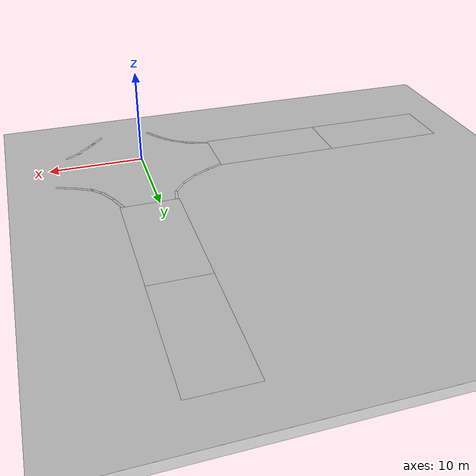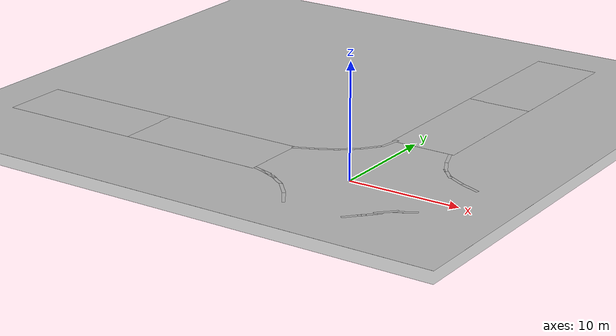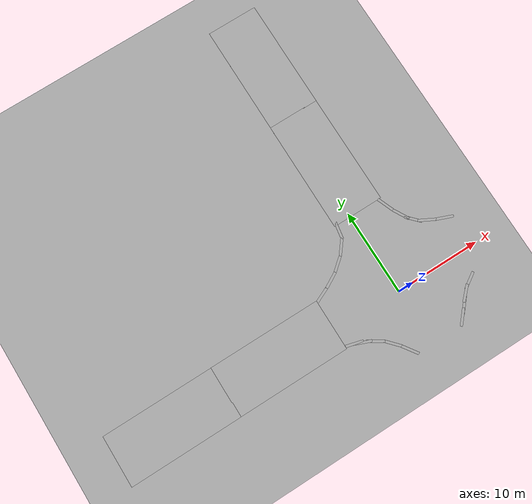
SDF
<sdf version="1.6">
 <world name="default">
  <model name="ground_plane">
   <pose>0 0 -1 0 -0 0</pose>
   <static>1</static>
   <link name="link">
    <collision name="collision">
     <geometry><plane><normal>0 0 1</normal><size>100 100</size></plane></geometry>
     <surface><friction><ode><mu>100</mu><mu2>50</mu2></ode></friction></surface>
    </collision>
    <visual name="visual">
     <cast_shadows>0</cast_shadows>
     <geometry><plane><normal>0 0 1</normal><size>100 100</size></plane></geometry>
     <material>
      <script><uri>file://media/materials/scripts/gazebo.material</uri><name>Gazebo/Grey</name></script>
     </material>
    </visual>
   </link>
  </model>
  <model name="road">
   <link name="body">
    <visual name="visual">
     <geometry><mesh><uri>file://road.dae</uri></mesh></geometry>
     <material><shader type="pixel"/></material>
    </visual>
   </link>
   <static>1</static>
   <pose>0.980998 16.1846 0 0 -0 0</pose>
  </model>
  <model name="road_0">
   <link name="body">
    <visual name="visual">
     <geometry><mesh><uri>file://road.dae</uri></mesh></geometry>
     <material><shader type="pixel"/></material>
    </visual>
   </link>
   <static>1</static>
   <pose>0.990078 29.3133 0 0 -0 0</pose>
  </model>
  <model name="road_4_clone_clone_1_clone">
   <link name="body">
    <visual name="visual">
     <geometry><mesh><uri>file://road.dae</uri></mesh></geometry>
     <material><shader type="pixel"/></material>
    </visual>
   </link>
   <static>1</static>
   <pose>-14.6376 0.870939 0 0 -0 1.57</pose>
  </model>
  <model name="road_4_clone_clone_1_clone_0">
   <link name="body">
    <visual name="visual">
     <geometry><mesh><uri>file://road.dae</uri></mesh></geometry>
     <material><shader type="pixel"/></material>
    </visual>
   </link>
   <static>1</static>
   <pose>-27.7601 0.868153 0 0 -0 1.57</pose>
  </model>
  <model name="serit_s_clone_0_clone">
   <link name="body">
    <visual name="visual">
     <geometry><mesh><uri>file://serit.dae</uri></mesh></geometry>
     <material><shader type="pixel"/></material>
    </visual>
   </link>
   <static>1</static>
   <pose>-2.40085 -5.82168 0 0 -0 0.603611</pose>
  </model>
  <model name="serit_s_clone_0_clone_1">
   <link name="body">
    <visual name="visual">
     <geometry><mesh><uri>file://serit.dae</uri></mesh></geometry>
     <material><shader type="pixel"/></material>
    </visual>
   </link>
   <static>1</static>
   <pose>-3.59152 -4.29035 0 0 -0 0.737264</pose>
  </model>
  <model name="serit_s_clone_0_clone_2">
   <link name="body">
    <visual name="visual">
     <geometry><mesh><uri>file://serit.dae</uri></mesh></geometry>
     <material><shader type="pixel"/></material>
    </visual>
   </link>
   <static>1</static>
   <pose>-7.05243 -2.12245 0 0 -0 1.30223</pose>
  </model>
  <model name="serit_s_clone_0_clone_3">
   <link name="body">
    <visual name="visual">
     <geometry><mesh><uri>file://serit.dae</uri></mesh></geometry>
     <material><shader type="pixel"/></material>
    </visual>
   </link>
   <static>1</static>
   <pose>-5.00283 -3.09727 0 0 -0 0.981012</pose>
  </model>
  <model name="serit_s_clone_0_clone_4">
   <link name="body">
    <visual name="visual">
     <geometry><mesh><uri>file://serit.dae</uri></mesh></geometry>
     <material><shader type="pixel"/></material>
    </visual>
   </link>
   <static>1</static>
   <pose>-6.22705 -2.47566 0 0 -0 1.18518</pose>
  </model>
  <model name="serit_s_clone_0_clone_5">
   <link name="body">
    <visual name="visual">
     <geometry><mesh><uri>file://serit.dae</uri></mesh></geometry>
     <material><shader type="pixel"/></material>
    </visual>
   </link>
   <static>1</static>
   <pose>8.66312 4.02994 0 0 -0 1.19518</pose>
  </model>
  <model name="serit_s_clone_0_clone_5_clone">
   <link name="body">
    <visual name="visual">
     <geometry><mesh><uri>file://serit.dae</uri></mesh></geometry>
     <material><shader type="pixel"/></material>
    </visual>
   </link>
   <static>1</static>
   <pose>6.88882 4.84864 0 0 -0 1.08006</pose>
  </model>
  <model name="serit_s_clone_0_clone_5_clone_0">
   <link name="body">
    <visual name="visual">
     <geometry><mesh><uri>file://serit.dae</uri></mesh></geometry>
     <material><shader type="pixel"/></material>
    </visual>
   </link>
   <static>1</static>
   <pose>3.99809 8.68661 0 0 -0 0.373348</pose>
  </model>
  <model name="serit_s_clone_0_clone_5_clone_0_clone">
   <link name="body">
    <visual name="visual">
     <geometry><mesh><uri>file://serit.dae</uri></mesh></geometry>
     <material><shader type="pixel"/></material>
    </visual>
   </link>
   <static>1</static>
   <pose>4.83984 6.87474 0 0 -0 0.499326</pose>
  </model>
  <model name="serit_s_clone_0_clone_5_clone_0_clone_clone">
   <link name="body">
    <visual name="visual">
     <geometry><mesh><uri>file://serit.dae</uri></mesh></geometry>
     <material><shader type="pixel"/></material>
    </visual>
   </link>
   <static>1</static>
   <pose>5.67555 5.721 0 0 -0 0.749397</pose>
  </model>
  <model name="serit_s_clone_0_clone_1_clone_0_clone_2_clone_2_clone_1_clone_0_clone_5_clone_2_clone_3_clone_7_clone_3_clone_9_clone_1_clone_clone_0_clone_clone_4_clone_1_clone_clone_5_clone_14_clone_clone_clone_6">
   <link name="body">
    <visual name="visual">
     <geometry><mesh><uri>file://serit.dae</uri></mesh></geometry>
     <material><shader type="pixel"/></material>
    </visual>
   </link>
   <static>1</static>
   <pose>-7.2749 4.02087 0 0 -0 1.99619</pose>
  </model>
  <model name="serit_s_clone_0_clone_1_clone_0_clone_2_clone_2_clone_1_clone_0_clone_5_clone_2_clone_3_clone_7_clone_3_clone_9_clone_1_clone_clone_0_clone_clone_4_clone_1_clone_clone_5_clone_14_clone_clone_clone_7">
   <link name="body">
    <visual name="visual">
     <geometry><mesh><uri>file://serit.dae</uri></mesh></geometry>
     <material><shader type="pixel"/></material>
    </visual>
   </link>
   <static>1</static>
   <pose>-5.53492 4.88162 0 0 -0 2.07962</pose>
  </model>
  <model name="serit_s_clone_0_clone_1_clone_0_clone_2_clone_2_clone_1_clone_0_clone_5_clone_2_clone_3_clone_7_clone_3_clone_9_clone_1_clone_clone_0_clone_clone_4_clone_1_clone_clone_5_clone_14_clone_clone_clone_8">
   <link name="body">
    <visual name="visual">
     <geometry><mesh><uri>file://serit.dae</uri></mesh></geometry>
     <material><shader type="pixel"/></material>
    </visual>
   </link>
   <static>1</static>
   <pose>-3.94658 5.98747 0 0 -0 2.26698</pose>
  </model>
  <model name="serit_s_clone_0_clone_1_clone_0_clone_2_clone_2_clone_1_clone_0_clone_5_clone_2_clone_3_clone_7_clone_3_clone_9_clone_1_clone_clone_0_clone_clone_4_clone_1_clone_clone_5_clone_14_clone_clone_clone_9">
   <link name="body">
    <visual name="visual">
     <geometry><mesh><uri>file://serit.dae</uri></mesh></geometry>
     <material><shader type="pixel"/></material>
    </visual>
   </link>
   <static>1</static>
   <pose>-2.63591 7.34053 0 0 -0 2.4778</pose>
  </model>
  <model name="serit_s_clone_0_clone_1_clone_0_clone_2_clone_2_clone_1_clone_0_clone_5_clone_2_clone_3_clone_7_clone_3_clone_9_clone_1_clone_clone_0_clone_clone_4_clone_1_clone_clone_5_clone_14_clone_clone_clone_10">
   <link name="body">
    <visual name="visual">
     <geometry><mesh><uri>file://serit.dae</uri></mesh></geometry>
     <material><shader type="pixel"/></material>
    </visual>
   </link>
   <static>1</static>
   <pose>-1.86912 8.98269 0 0 -0 2.97126</pose>
  </model>
  <model name="serit_s_clone_0_clone_1_clone_0_clone_2_clone_2_clone_1_clone_0_clone_5_clone_2_clone_3_clone_7_clone_3_clone_9_clone_1_clone_clone_0_clone_clone_4_clone_1_clone_clone_5_clone_14_clone_clone_clone_11">
   <link name="body">
    <visual name="visual">
     <geometry><mesh><uri>file://serit.dae</uri></mesh></geometry>
     <material><shader type="pixel"/></material>
    </visual>
   </link>
   <static>1</static>
   <pose>4.24907 -5.90929 -0.047361 0 -0 2.39773</pose>
  </model>
  <model name="serit_s_clone_0_clone_1_clone_0_clone_2_clone_2_clone_1_clone_0_clone_5_clone_2_clone_3_clone_7_clone_3_clone_9_clone_1_clone_clone_0_clone_clone_4_clone_1_clone_clone_5_clone_14_clone_clone_clone_12_clone">
   <link name="body">
    <visual name="visual">
     <geometry><mesh><uri>file://serit.dae</uri></mesh></geometry>
     <material><shader type="pixel"/></material>
    </visual>
   </link>
   <static>1</static>
   <pose>7.08597 -3.06371 0 0 -0 2.14787</pose>
  </model>
  <model name="serit_s_clone_0_clone_1_clone_0_clone_2_clone_2_clone_1_clone_0_clone_5_clone_2_clone_3_clone_7_clone_3_clone_9_clone_1_clone_clone_0_clone_clone_4_clone_1_clone_clone_5_clone_14_clone_clone_clone_12_clone_0">
   <link name="body">
    <visual name="visual">
     <geometry><mesh><uri>file://serit.dae</uri></mesh></geometry>
     <material><shader type="pixel"/></material>
    </visual>
   </link>
   <static>1</static>
   <pose>5.91201 -3.98768 0.060602 0 -0 2.35775</pose>
  </model>
  <model name="serit_s_clone_0_clone_1_clone_0_clone_2_clone_2_clone_1_clone_0_clone_5_clone_2_clone_3_clone_7_clone_3_clone_9_clone_1_clone_clone_0_clone_clone_4_clone_1_clone_clone_5_clone_14_clone_clone_clone_12_clone_1">
   <link name="body">
    <visual name="visual">
     <geometry><mesh><uri>file://serit.dae</uri></mesh></geometry>
     <material><shader type="pixel"/></material>
    </visual>
   </link>
   <static>1</static>
   <pose>5.08105 -4.96038 0 0 -0 2.42205</pose>
  </model>
  <model name="ekyeri">
   <link name="body">
    <visual name="visual">
     <geometry><mesh><uri>file://ek.dae</uri></mesh></geometry>
     <material><shader type="pixel"/></material>
    </visual>
   </link>
   <static>1</static>
   <pose>-18.3447 17.3533 -0.001 0 -0 0</pose>
  </model>
  <model name="serit_s_clone_0_clone_1_clone_0_clone_2_clone_2_clone_1_clone_0_clone_5_clone_2_clone_3_clone_7_clone_3_clone_9_clone_1_clone_clone_0_clone_clone_4_clone_1_clone_clone_5_clone_14_clone_clone_clone_12_clone_1_clone">
   <link name="body">
    <visual name="visual">
     <geometry><mesh><uri>file://serit.dae</uri></mesh></geometry>
     <material><shader type="pixel"/></material>
    </visual>
   </link>
   <static>1</static>
   <pose>4.20067 -5.92251 0 0 -0 2.42205</pose>
  </model>
 </world>
</sdf>
